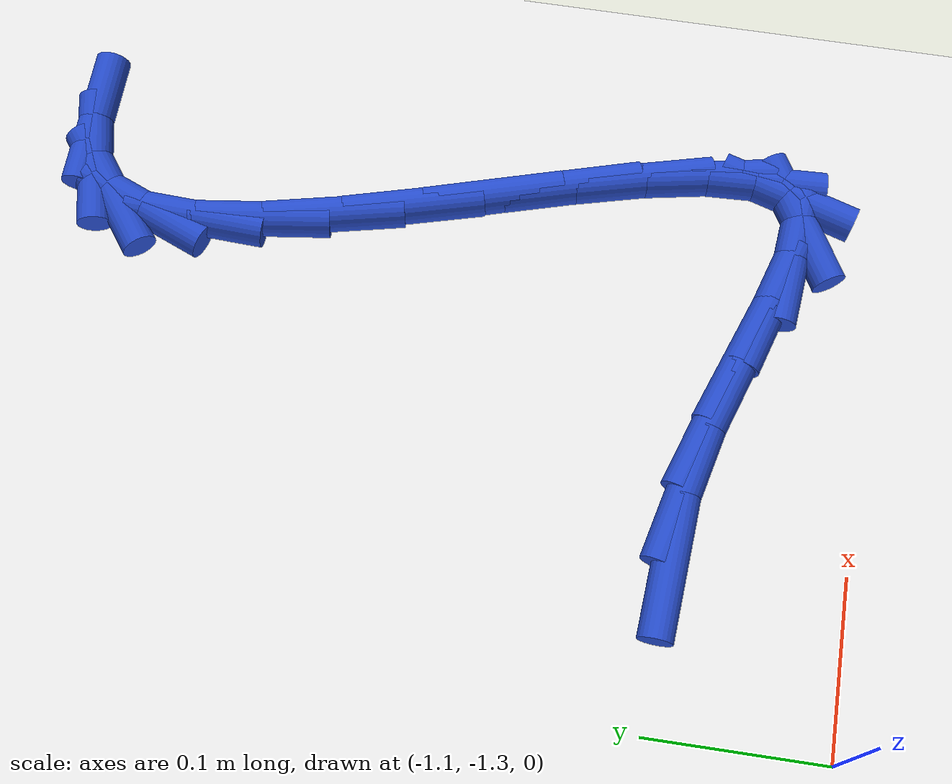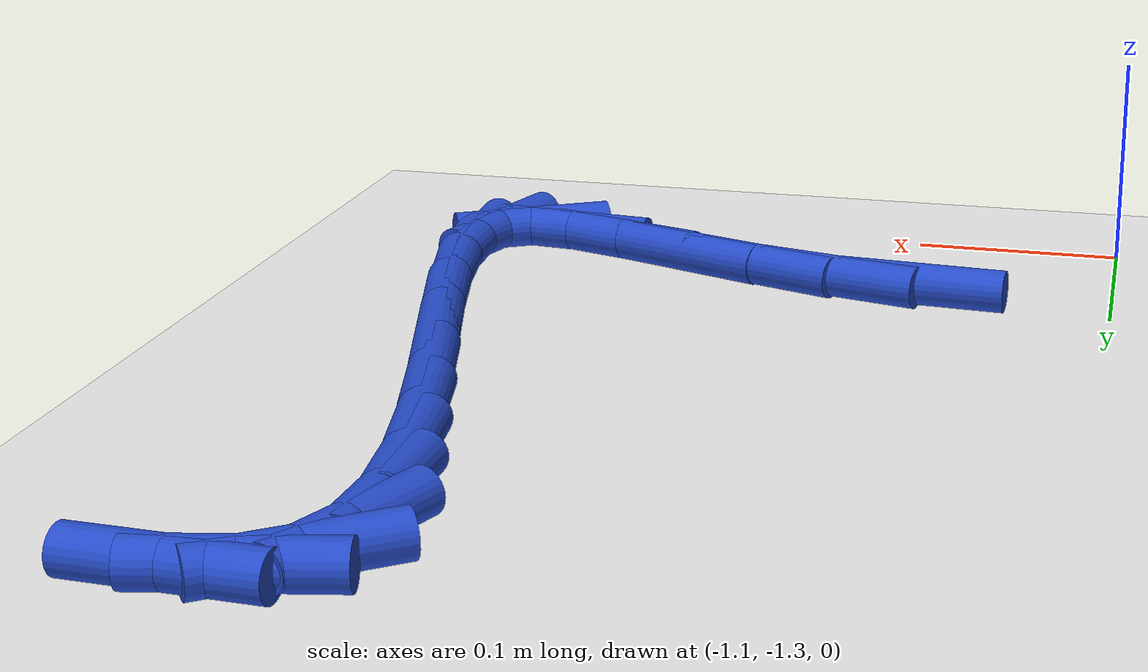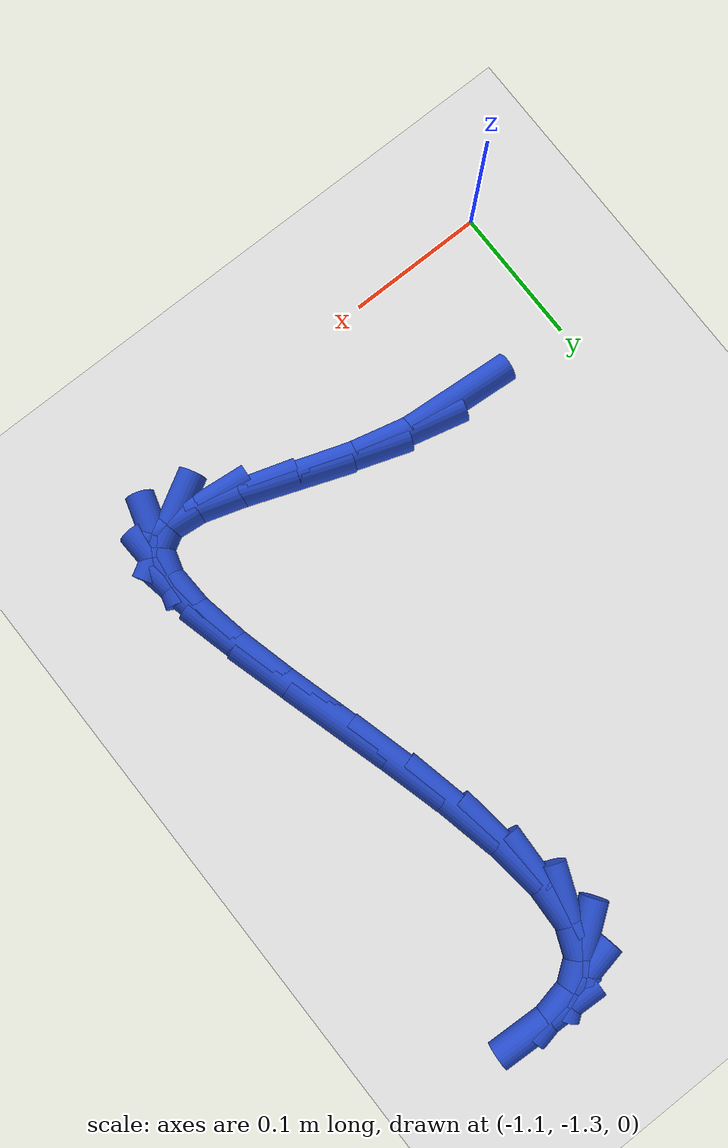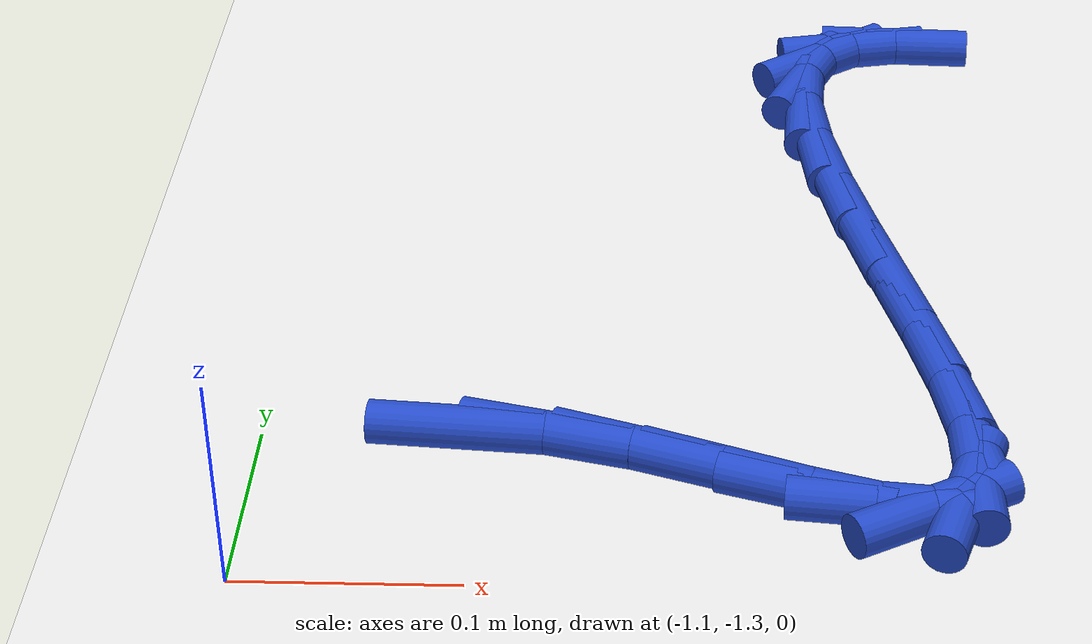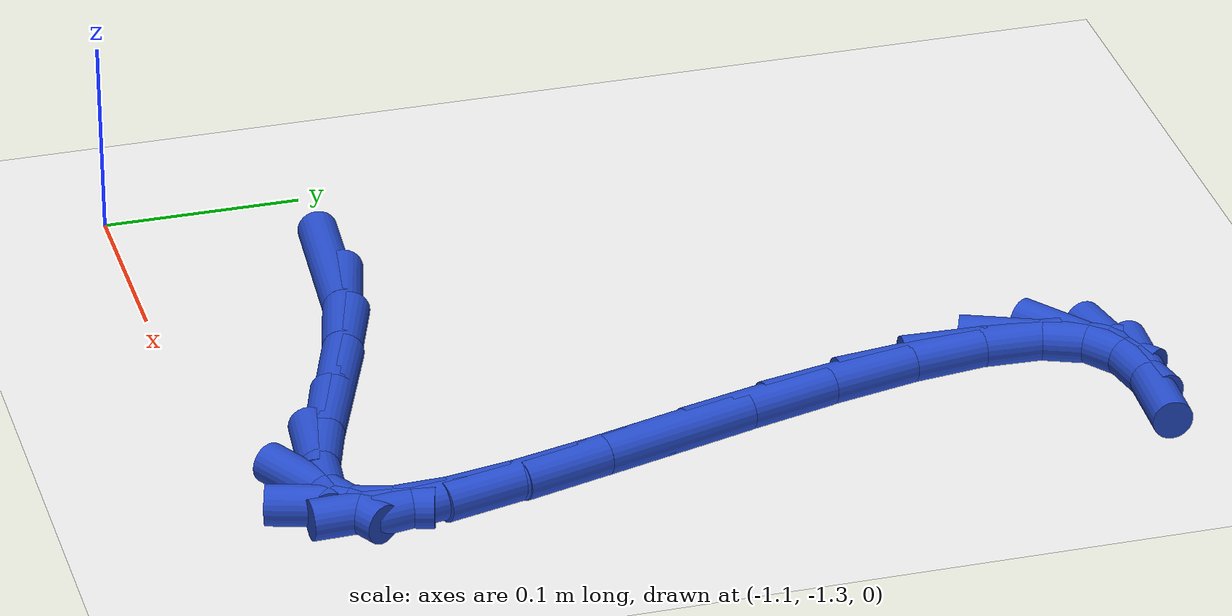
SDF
<sdf version="1.6">
 <world name="default">
  <model name="ground_plane">
   <static>1</static>
   <link name="link">
    <collision name="collision">
     <geometry><plane><normal>0 0 1</normal><size>100 100</size></plane></geometry>
     <surface><friction><ode><mu>100</mu><mu2>50</mu2></ode></friction></surface>
    </collision>
    <visual name="visual">
     <cast_shadows>0</cast_shadows>
     <geometry><plane><normal>0 0 1</normal><size>100 100</size></plane></geometry>
     <material>
      <script><uri>file://media/materials/scripts/gazebo.material</uri><name>Gazebo/WhiteGlow</name></script>
     </material>
    </visual>
   </link>
  </model>
  <model name="line">
   <link name="link_191">
    <pose>-1.0113270711571554 -1.2043664836692933 0.01 0 1.57 -0.0755250665239885</pose>
    <collision name="collision">
     <geometry><cylinder><radius>0.01</radius><length>0.08</length></cylinder></geometry>
    </collision>
    <visual name="visual">
     <material>
      <script><name>Gazebo/Blue</name><uri>file://media/materials/scripts/gazebo.material</uri></script>
     </material>
     <geometry><cylinder><radius>0.01</radius><length>0.08</length></cylinder></geometry>
    </visual>
   </link>
   <link name="link_192">
    <pose>-0.9710725539977723 -1.207412502492528 0.01 0 1.57 -0.2392602773056122</pose>
    <collision name="collision">
     <geometry><cylinder><radius>0.01</radius><length>0.08</length></cylinder></geometry>
    </collision>
    <visual name="visual">
     <material>
      <script><name>Gazebo/Blue</name><uri>file://media/materials/scripts/gazebo.material</uri></script>
     </material>
     <geometry><cylinder><radius>0.01</radius><length>0.08</length></cylinder></geometry>
    </visual>
   </link>
   <link name="link_193">
    <pose>-0.9306120453681123 -1.2172821485642906 0.01 0 1.57 -0.3288742297730293</pose>
    <collision name="collision">
     <geometry><cylinder><radius>0.01</radius><length>0.08</length></cylinder></geometry>
    </collision>
    <visual name="visual">
     <material>
      <script><name>Gazebo/Blue</name><uri>file://media/materials/scripts/gazebo.material</uri></script>
     </material>
     <geometry><cylinder><radius>0.01</radius><length>0.08</length></cylinder></geometry>
    </visual>
   </link>
   <link name="link_194">
    <pose>-0.8917390020283911 -1.2305482549815956 0.01 0 1.57 -0.35483613361585725</pose>
    <collision name="collision">
     <geometry><cylinder><radius>0.01</radius><length>0.08</length></cylinder></geometry>
    </collision>
    <visual name="visual">
     <material>
      <script><name>Gazebo/Blue</name><uri>file://media/materials/scripts/gazebo.material</uri></script>
     </material>
     <geometry><cylinder><radius>0.01</radius><length>0.08</length></cylinder></geometry>
    </visual>
   </link>
   <link name="link_195">
    <pose>-0.8562759579815449 -1.2436879780117114 0.01 0 1.57 -0.3041940892161809</pose>
    <collision name="collision">
     <geometry><cylinder><radius>0.01</radius><length>0.08</length></cylinder></geometry>
    </collision>
    <visual name="visual">
     <material>
      <script><name>Gazebo/Blue</name><uri>file://media/materials/scripts/gazebo.material</uri></script>
     </material>
     <geometry><cylinder><radius>0.01</radius><length>0.08</length></cylinder></geometry>
    </visual>
   </link>
   <link name="link_196">
    <pose>-0.8260454472305091 -1.2531784739219072 0.01 0 1.57 -0.0997062780543276</pose>
    <collision name="collision">
     <geometry><cylinder><radius>0.01</radius><length>0.08</length></cylinder></geometry>
    </collision>
    <visual name="visual">
     <material>
      <script><name>Gazebo/Blue</name><uri>file://media/materials/scripts/gazebo.material</uri></script>
     </material>
     <geometry><cylinder><radius>0.01</radius><length>0.08</length></cylinder></geometry>
    </visual>
   </link>
   <link name="link_197">
    <pose>-0.8028700037782203 -1.2554968989794528 0.01 0 1.57 0.5150395371993398</pose>
    <collision name="collision">
     <geometry><cylinder><radius>0.01</radius><length>0.08</length></cylinder></geometry>
    </collision>
    <visual name="visual">
     <material>
      <script><name>Gazebo/Blue</name><uri>file://media/materials/scripts/gazebo.material</uri></script>
     </material>
     <geometry><cylinder><radius>0.01</radius><length>0.08</length></cylinder></geometry>
    </visual>
   </link>
   <link name="link_198">
    <pose>-0.7884402100510184 -1.2473297252804947 0.01 0 1.57 1.270945874038793</pose>
    <collision name="collision">
     <geometry><cylinder><radius>0.01</radius><length>0.08</length></cylinder></geometry>
    </collision>
    <visual name="visual">
     <material>
      <script><name>Gazebo/Blue</name><uri>file://media/materials/scripts/gazebo.material</uri></script>
     </material>
     <geometry><cylinder><radius>0.01</radius><length>0.08</length></cylinder></geometry>
    </visual>
   </link>
   <link name="link_199">
    <pose>-0.782569479785043 -1.2283411924512662 0.01 0 1.57 -1.5312583995536462</pose>
    <collision name="collision">
     <geometry><cylinder><radius>0.01</radius><length>0.08</length></cylinder></geometry>
    </collision>
    <visual name="visual">
     <material>
      <script><name>Gazebo/Blue</name><uri>file://media/materials/scripts/gazebo.material</uri></script>
     </material>
     <geometry><cylinder><radius>0.01</radius><length>0.08</length></cylinder></geometry>
    </visual>
   </link>
   <link name="link_200">
    <pose>-0.7836743404088653 -1.2004114319084531 0.01 0 1.57 -1.387859779636385</pose>
    <collision name="collision">
     <geometry><cylinder><radius>0.01</radius><length>0.08</length></cylinder></geometry>
    </collision>
    <visual name="visual">
     <material>
      <script><name>Gazebo/Blue</name><uri>file://media/materials/scripts/gazebo.material</uri></script>
     </material>
     <geometry><cylinder><radius>0.01</radius><length>0.08</length></cylinder></geometry>
    </visual>
   </link>
   <link name="link_201">
    <pose>-0.7901380616373676 -1.1654733320428268 0.01 0 1.57 -1.3210611205772587</pose>
    <collision name="collision">
     <geometry><cylinder><radius>0.01</radius><length>0.08</length></cylinder></geometry>
    </collision>
    <visual name="visual">
     <material>
      <script><name>Gazebo/Blue</name><uri>file://media/materials/scripts/gazebo.material</uri></script>
     </material>
     <geometry><cylinder><radius>0.01</radius><length>0.08</length></cylinder></geometry>
    </visual>
   </link>
   <link name="link_202">
    <pose>-0.8003439131854321 -1.1254597812451592 0.01 0 1.57 -1.292476669951162</pose>
    <collision name="collision">
     <geometry><cylinder><radius>0.01</radius><length>0.08</length></cylinder></geometry>
    </collision>
    <visual name="visual">
     <material>
      <script><name>Gazebo/Blue</name><uri>file://media/materials/scripts/gazebo.material</uri></script>
     </material>
     <geometry><cylinder><radius>0.01</radius><length>0.08</length></cylinder></geometry>
    </visual>
   </link>
   <link name="link_203">
    <pose>-0.8126751647679411 -1.0823036679062228 0.01 0 1.57 -1.2890828304339081</pose>
    <collision name="collision">
     <geometry><cylinder><radius>0.01</radius><length>0.08</length></cylinder></geometry>
    </collision>
    <visual name="visual">
     <material>
      <script><name>Gazebo/Blue</name><uri>file://media/materials/scripts/gazebo.material</uri></script>
     </material>
     <geometry><cylinder><radius>0.01</radius><length>0.08</length></cylinder></geometry>
    </visual>
   </link>
   <link name="link_204">
    <pose>-0.8255150860997766 -1.0379378804167887 0.01 0 1.57 -1.308187542247616</pose>
    <collision name="collision">
     <geometry><cylinder><radius>0.01</radius><length>0.08</length></cylinder></geometry>
    </collision>
    <visual name="visual">
     <material>
      <script><name>Gazebo/Blue</name><uri>file://media/materials/scripts/gazebo.material</uri></script>
     </material>
     <geometry><cylinder><radius>0.01</radius><length>0.08</length></cylinder></geometry>
    </visual>
   </link>
   <link name="link_205">
    <pose>-0.8372469468958216 -0.9942953071676294 0.01 0 1.57 -1.3544776722248102</pose>
    <collision name="collision">
     <geometry><cylinder><radius>0.01</radius><length>0.08</length></cylinder></geometry>
    </collision>
    <visual name="visual">
     <material>
      <script><name>Gazebo/Blue</name><uri>file://media/materials/scripts/gazebo.material</uri></script>
     </material>
     <geometry><cylinder><radius>0.01</radius><length>0.08</length></cylinder></geometry>
    </visual>
   </link>
   <link name="link_206">
    <pose>-0.8462540168709575 -0.9533088365495161 0.01 0 1.57 -1.4433082486556361</pose>
    <collision name="collision">
     <geometry><cylinder><radius>0.01</radius><length>0.08</length></cylinder></geometry>
    </collision>
    <visual name="visual">
     <material>
      <script><name>Gazebo/Blue</name><uri>file://media/materials/scripts/gazebo.material</uri></script>
     </material>
     <geometry><cylinder><radius>0.01</radius><length>0.08</length></cylinder></geometry>
    </visual>
   </link>
   <link name="link_207">
    <pose>-0.8509195657400674 -0.9169113569532217 0.01 0 1.57 1.527553792254709</pose>
    <collision name="collision">
     <geometry><cylinder><radius>0.01</radius><length>0.08</length></cylinder></geometry>
    </collision>
    <visual name="visual">
     <material>
      <script><name>Gazebo/Blue</name><uri>file://media/materials/scripts/gazebo.material</uri></script>
     </material>
     <geometry><cylinder><radius>0.01</radius><length>0.08</length></cylinder></geometry>
    </visual>
   </link>
   <link name="link_208">
    <pose>-0.849626863218033 -0.8870357567695174 0.01 0 1.57 1.179776852094817</pose>
    <collision name="collision">
     <geometry><cylinder><radius>0.01</radius><length>0.08</length></cylinder></geometry>
    </collision>
    <visual name="visual">
     <material>
      <script><name>Gazebo/Blue</name><uri>file://media/materials/scripts/gazebo.material</uri></script>
     </material>
     <geometry><cylinder><radius>0.01</radius><length>0.08</length></cylinder></geometry>
    </visual>
   </link>
   <link name="link_209">
    <pose>-0.8407836359980208 -0.8655844810162288 0.01 0 1.57 0.636684913022003</pose>
    <collision name="collision">
     <geometry><cylinder><radius>0.01</radius><length>0.08</length></cylinder></geometry>
    </collision>
    <visual name="visual">
     <material>
      <script><name>Gazebo/Blue</name><uri>file://media/materials/scripts/gazebo.material</uri></script>
     </material>
     <geometry><cylinder><radius>0.01</radius><length>0.08</length></cylinder></geometry>
    </visual>
   </link>
   <link name="link_210">
    <pose>-0.8238934949688947 -0.8530958482483745 0.01 0 1.57 0.20093051145482285</pose>
    <collision name="collision">
     <geometry><cylinder><radius>0.01</radius><length>0.08</length></cylinder></geometry>
    </collision>
    <visual name="visual">
     <material>
      <script><name>Gazebo/Blue</name><uri>file://media/materials/scripts/gazebo.material</uri></script>
     </material>
     <geometry><cylinder><radius>0.01</radius><length>0.08</length></cylinder></geometry>
    </visual>
   </link>
   <link name="link_211">
    <pose>-0.7999737961841656 -0.848223908733193 0.01 0 1.57 -0.04225752042273902</pose>
    <collision name="collision">
     <geometry><cylinder><radius>0.01</radius><length>0.08</length></cylinder></geometry>
    </collision>
    <visual name="visual">
     <material>
      <script><name>Gazebo/Blue</name><uri>file://media/materials/scripts/gazebo.material</uri></script>
     </material>
     <geometry><cylinder><radius>0.01</radius><length>0.08</length></cylinder></geometry>
    </visual>
   </link>
  </model>
 </world>
</sdf>
